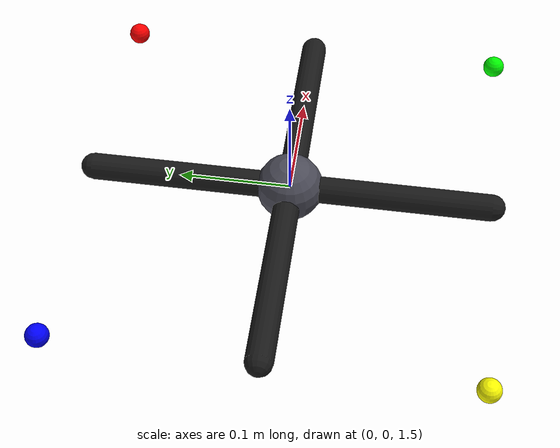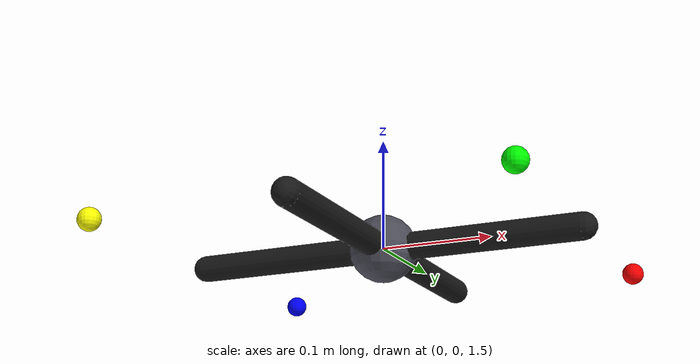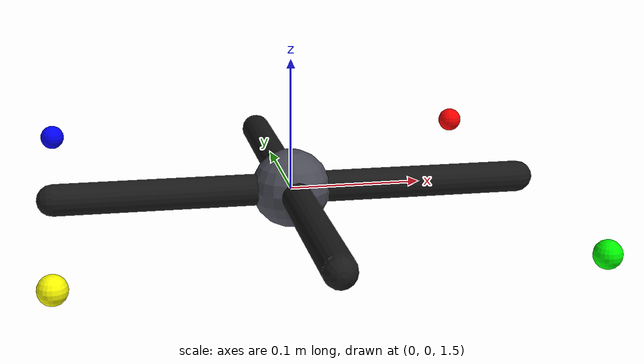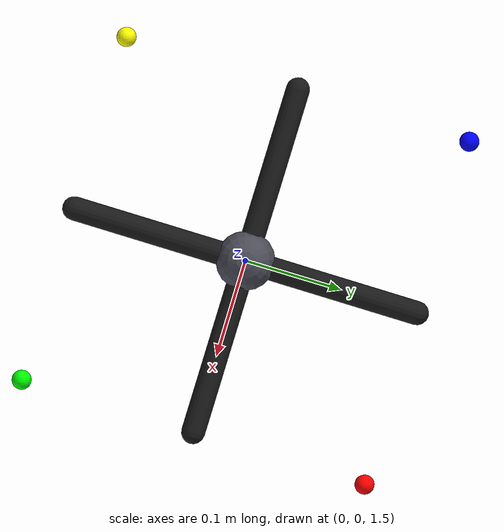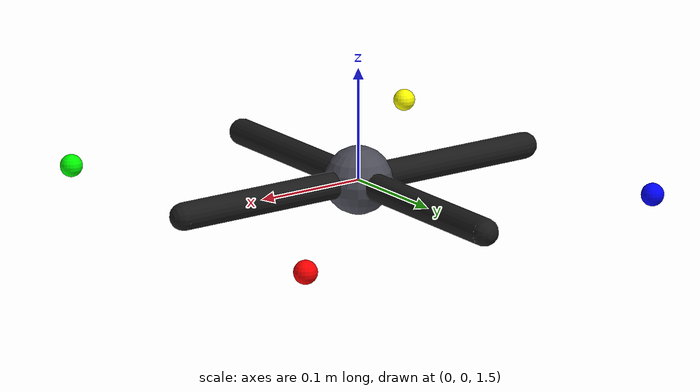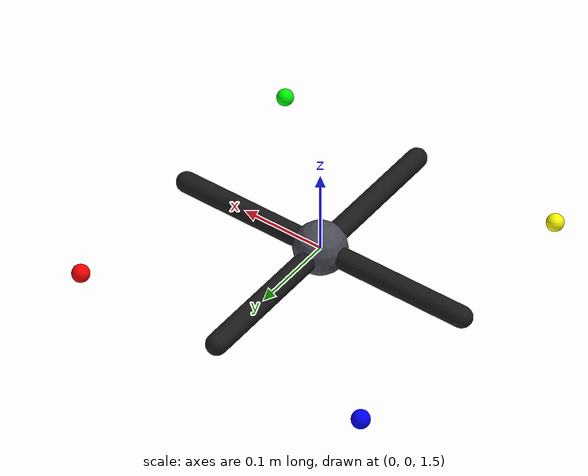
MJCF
<mujoco model="drone_base">
  <compiler angle="radian" coordinate="local"/>
  <option timestep="0.002" gravity="0 0 -9.81" integrator="RK4"/>

  <visual>
    <headlight ambient="0.5 0.5 0.5" diffuse="0.8 0.8 0.8"/>
  </visual>

  <asset>
    <texture name="grid" type="2d" builtin="checker" rgb1="0.2 0.3 0.4" rgb2="0.1 0.1 0.1" width="512" height="512"/>
    <material name="mat_grid" texture="grid" texrepeat="10 10" reflectance="0.1"/>
  </asset>

  <worldbody>
    <geom name="ground" type="plane" size="20 20 0.1" material="mat_grid"/>
    <light pos="0 0 6" dir="0 0 -1"/>

    <body name="drone" pos="0 0 1.5">
      <freejoint/>
      <inertial pos="0 0 0" mass="1.6" diaginertia="0.02 0.02 0.04"/>

      <!-- Simple quad frame -->
      <geom name="frame_x" type="capsule" fromto="-0.18 0 0 0.18 0 0" size="0.012" rgba="0.1 0.1 0.1 1"/>
      <geom name="frame_y" type="capsule" fromto="0 -0.18 0 0 0.18 0" size="0.012" rgba="0.1 0.1 0.1 1"/>
      <geom name="hub" type="sphere" size="0.03" rgba="0.3 0.3 0.35 1"/>

      <!-- Rotor sites for applying forces -->
      <site name="rotor_fl" pos="0.18 0.18 0" size="0.01" rgba="1 0 0 1"/>
      <site name="rotor_fr" pos="0.18 -0.18 0" size="0.01" rgba="0 1 0 1"/>
      <site name="rotor_rl" pos="-0.18 0.18 0" size="0.01" rgba="0 0 1 1"/>
      <site name="rotor_rr" pos="-0.18 -0.18 0" size="0.01" rgba="1 1 0 1"/>
    </body>
  </worldbody>
</mujoco>
